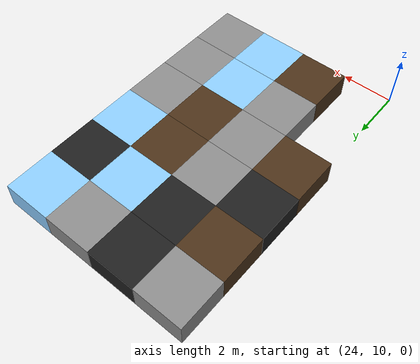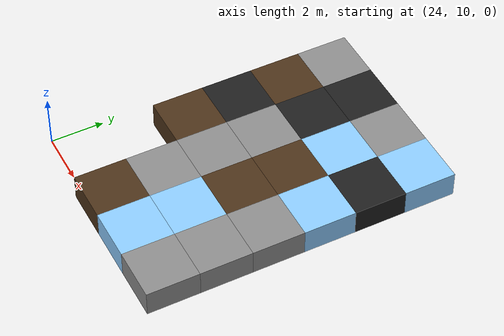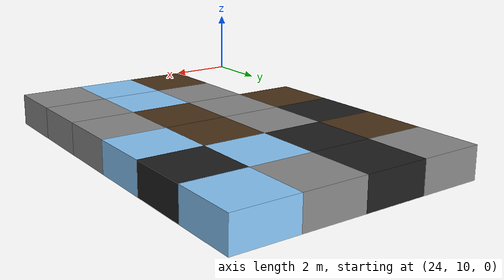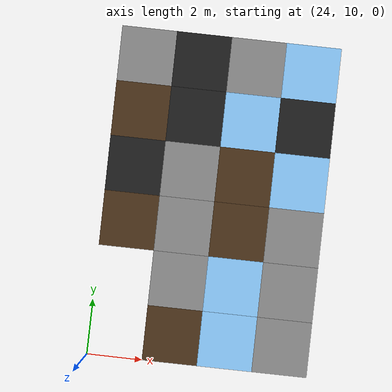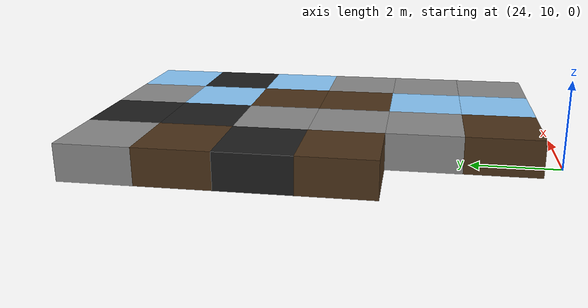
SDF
<sdf version="1.5">
 <world name="squares_example">
  <model name="tile_29_21">
   <static>true</static>
   <pose>27.000 11.000 -0.500 0 0 0</pose>
   <link name="link">
    <collision name="col">
     <geometry><box><size>2.0 2.0 1.0</size></box></geometry>
     <surface>
      <friction>
       <ode><mu>0.6</mu><mu2>0.4</mu2><fdir1>1 0 0</fdir1><slip1>0.08</slip1><slip2>0.08</slip2></ode>
       <torsional>
        <coefficient>0.03</coefficient>
        <use_patch_radius>false</use_patch_radius>
        <surface_radius>0.12</surface_radius>
        <ode><slip>0.0</slip></ode>
       </torsional>
      </friction>
      <bounce><restitution_coefficient>0.0</restitution_coefficient><threshold>0.1</threshold></bounce>
      <contact>
       <ode><kp>1000000.0</kp><kd>10000.0</kd><max_vel>0.01</max_vel><min_depth>0.0</min_depth></ode>
      </contact>
     </surface>
    </collision>
    <visual name="visual">
     <geometry><box><size>2.0 2.0 1.0</size></box></geometry>
     <material>
      <diffuse>0.30 0.20 0.10 1</diffuse>
      <ambient>0 0 0 0</ambient>
      <specular>0 0 0 1</specular>
      <emissive>0 0 0 1</emissive>
     </material>
    </visual>
   </link>
  </model>
  <model name="tile_30_21">
   <static>true</static>
   <pose>29.000 11.000 -0.500 0 0 0</pose>
   <link name="link">
    <collision name="col">
     <geometry><box><size>2.0 2.0 1.0</size></box></geometry>
     <surface>
      <friction>
       <ode><mu>0.03</mu><mu2>0.02</mu2><fdir1>1 0 0</fdir1><slip1>0.03</slip1><slip2>0.03</slip2></ode>
       <torsional>
        <coefficient>0.005</coefficient>
        <use_patch_radius>false</use_patch_radius>
        <surface_radius>0.12</surface_radius>
        <ode><slip>0.01</slip></ode>
       </torsional>
      </friction>
      <bounce><restitution_coefficient>0.0</restitution_coefficient><threshold>0.1</threshold></bounce>
      <contact>
       <ode><kp>10000000.0</kp><kd>1000.0</kd><max_vel>0.01</max_vel><min_depth>0.0</min_depth></ode>
      </contact>
     </surface>
    </collision>
    <visual name="visual">
     <geometry><box><size>2.0 2.0 1.0</size></box></geometry>
     <material>
      <diffuse>0.55 0.80 1.00 1</diffuse>
      <ambient>0 0 0 0</ambient>
      <specular>0 0 0 1</specular>
      <emissive>0 0 0 1</emissive>
     </material>
    </visual>
   </link>
  </model>
  <model name="tile_31_21">
   <static>true</static>
   <pose>31.000 11.000 -0.500 0 0 0</pose>
   <link name="link">
    <collision name="col">
     <geometry><box><size>2.0 2.0 1.0</size></box></geometry>
     <surface>
      <friction>
       <ode><mu>0.8</mu><mu2>0.3</mu2><fdir1>1 0 0</fdir1><slip1>0.0</slip1><slip2>0.0</slip2></ode>
       <torsional>
        <coefficient>0.03</coefficient>
        <use_patch_radius>false</use_patch_radius>
        <surface_radius>0.12</surface_radius>
        <ode><slip>0.0</slip></ode>
       </torsional>
      </friction>
      <bounce><restitution_coefficient>0.0</restitution_coefficient><threshold>0.1</threshold></bounce>
      <contact>
       <ode><kp>10000000000.0</kp><kd>10000000.0</kd><max_vel>0.01</max_vel><min_depth>0.0</min_depth></ode>
      </contact>
     </surface>
    </collision>
    <visual name="visual">
     <geometry><box><size>2.0 2.0 1.0</size></box></geometry>
     <material>
      <diffuse>0.55 0.55 0.55 1</diffuse>
      <ambient>0 0 0 0</ambient>
      <specular>0 0 0 1</specular>
      <emissive>0 0 0 1</emissive>
     </material>
    </visual>
   </link>
  </model>
  <model name="tile_29_22">
   <static>true</static>
   <pose>27.000 13.000 -0.500 0 0 0</pose>
   <link name="link">
    <collision name="col">
     <geometry><box><size>2.0 2.0 1.0</size></box></geometry>
     <surface>
      <friction>
       <ode><mu>0.8</mu><mu2>0.3</mu2><fdir1>1 0 0</fdir1><slip1>0.0</slip1><slip2>0.0</slip2></ode>
       <torsional>
        <coefficient>0.03</coefficient>
        <use_patch_radius>false</use_patch_radius>
        <surface_radius>0.12</surface_radius>
        <ode><slip>0.0</slip></ode>
       </torsional>
      </friction>
      <bounce><restitution_coefficient>0.0</restitution_coefficient><threshold>0.1</threshold></bounce>
      <contact>
       <ode><kp>10000000000.0</kp><kd>10000000.0</kd><max_vel>0.01</max_vel><min_depth>0.0</min_depth></ode>
      </contact>
     </surface>
    </collision>
    <visual name="visual">
     <geometry><box><size>2.0 2.0 1.0</size></box></geometry>
     <material>
      <diffuse>0.55 0.55 0.55 1</diffuse>
      <ambient>0 0 0 0</ambient>
      <specular>0 0 0 1</specular>
      <emissive>0 0 0 1</emissive>
     </material>
    </visual>
   </link>
  </model>
  <model name="tile_30_22">
   <static>true</static>
   <pose>29.000 13.000 -0.500 0 0 0</pose>
   <link name="link">
    <collision name="col">
     <geometry><box><size>2.0 2.0 1.0</size></box></geometry>
     <surface>
      <friction>
       <ode><mu>0.03</mu><mu2>0.02</mu2><fdir1>1 0 0</fdir1><slip1>0.03</slip1><slip2>0.03</slip2></ode>
       <torsional>
        <coefficient>0.005</coefficient>
        <use_patch_radius>false</use_patch_radius>
        <surface_radius>0.12</surface_radius>
        <ode><slip>0.01</slip></ode>
       </torsional>
      </friction>
      <bounce><restitution_coefficient>0.0</restitution_coefficient><threshold>0.1</threshold></bounce>
      <contact>
       <ode><kp>10000000.0</kp><kd>1000.0</kd><max_vel>0.01</max_vel><min_depth>0.0</min_depth></ode>
      </contact>
     </surface>
    </collision>
    <visual name="visual">
     <geometry><box><size>2.0 2.0 1.0</size></box></geometry>
     <material>
      <diffuse>0.55 0.80 1.00 1</diffuse>
      <ambient>0 0 0 0</ambient>
      <specular>0 0 0 1</specular>
      <emissive>0 0 0 1</emissive>
     </material>
    </visual>
   </link>
  </model>
  <model name="tile_31_22">
   <static>true</static>
   <pose>31.000 13.000 -0.500 0 0 0</pose>
   <link name="link">
    <collision name="col">
     <geometry><box><size>2.0 2.0 1.0</size></box></geometry>
     <surface>
      <friction>
       <ode><mu>0.8</mu><mu2>0.3</mu2><fdir1>1 0 0</fdir1><slip1>0.0</slip1><slip2>0.0</slip2></ode>
       <torsional>
        <coefficient>0.03</coefficient>
        <use_patch_radius>false</use_patch_radius>
        <surface_radius>0.12</surface_radius>
        <ode><slip>0.0</slip></ode>
       </torsional>
      </friction>
      <bounce><restitution_coefficient>0.0</restitution_coefficient><threshold>0.1</threshold></bounce>
      <contact>
       <ode><kp>10000000000.0</kp><kd>10000000.0</kd><max_vel>0.01</max_vel><min_depth>0.0</min_depth></ode>
      </contact>
     </surface>
    </collision>
    <visual name="visual">
     <geometry><box><size>2.0 2.0 1.0</size></box></geometry>
     <material>
      <diffuse>0.55 0.55 0.55 1</diffuse>
      <ambient>0 0 0 0</ambient>
      <specular>0 0 0 1</specular>
      <emissive>0 0 0 1</emissive>
     </material>
    </visual>
   </link>
  </model>
  <model name="tile_28_23">
   <static>true</static>
   <pose>25.000 15.000 -0.500 0 0 0</pose>
   <link name="link">
    <collision name="col">
     <geometry><box><size>2.0 2.0 1.0</size></box></geometry>
     <surface>
      <friction>
       <ode><mu>0.6</mu><mu2>0.4</mu2><fdir1>1 0 0</fdir1><slip1>0.08</slip1><slip2>0.08</slip2></ode>
       <torsional>
        <coefficient>0.03</coefficient>
        <use_patch_radius>false</use_patch_radius>
        <surface_radius>0.12</surface_radius>
        <ode><slip>0.0</slip></ode>
       </torsional>
      </friction>
      <bounce><restitution_coefficient>0.0</restitution_coefficient><threshold>0.1</threshold></bounce>
      <contact>
       <ode><kp>1000000.0</kp><kd>10000.0</kd><max_vel>0.01</max_vel><min_depth>0.0</min_depth></ode>
      </contact>
     </surface>
    </collision>
    <visual name="visual">
     <geometry><box><size>2.0 2.0 1.0</size></box></geometry>
     <material>
      <diffuse>0.30 0.20 0.10 1</diffuse>
      <ambient>0 0 0 0</ambient>
      <specular>0 0 0 1</specular>
      <emissive>0 0 0 1</emissive>
     </material>
    </visual>
   </link>
  </model>
  <model name="tile_29_23">
   <static>true</static>
   <pose>27.000 15.000 -0.500 0 0 0</pose>
   <link name="link">
    <collision name="col">
     <geometry><box><size>2.0 2.0 1.0</size></box></geometry>
     <surface>
      <friction>
       <ode><mu>0.8</mu><mu2>0.3</mu2><fdir1>1 0 0</fdir1><slip1>0.0</slip1><slip2>0.0</slip2></ode>
       <torsional>
        <coefficient>0.03</coefficient>
        <use_patch_radius>false</use_patch_radius>
        <surface_radius>0.12</surface_radius>
        <ode><slip>0.0</slip></ode>
       </torsional>
      </friction>
      <bounce><restitution_coefficient>0.0</restitution_coefficient><threshold>0.1</threshold></bounce>
      <contact>
       <ode><kp>10000000000.0</kp><kd>10000000.0</kd><max_vel>0.01</max_vel><min_depth>0.0</min_depth></ode>
      </contact>
     </surface>
    </collision>
    <visual name="visual">
     <geometry><box><size>2.0 2.0 1.0</size></box></geometry>
     <material>
      <diffuse>0.55 0.55 0.55 1</diffuse>
      <ambient>0 0 0 0</ambient>
      <specular>0 0 0 1</specular>
      <emissive>0 0 0 1</emissive>
     </material>
    </visual>
   </link>
  </model>
  <model name="tile_30_23">
   <static>true</static>
   <pose>29.000 15.000 -0.500 0 0 0</pose>
   <link name="link">
    <collision name="col">
     <geometry><box><size>2.0 2.0 1.0</size></box></geometry>
     <surface>
      <friction>
       <ode><mu>0.6</mu><mu2>0.4</mu2><fdir1>1 0 0</fdir1><slip1>0.08</slip1><slip2>0.08</slip2></ode>
       <torsional>
        <coefficient>0.03</coefficient>
        <use_patch_radius>false</use_patch_radius>
        <surface_radius>0.12</surface_radius>
        <ode><slip>0.0</slip></ode>
       </torsional>
      </friction>
      <bounce><restitution_coefficient>0.0</restitution_coefficient><threshold>0.1</threshold></bounce>
      <contact>
       <ode><kp>1000000.0</kp><kd>10000.0</kd><max_vel>0.01</max_vel><min_depth>0.0</min_depth></ode>
      </contact>
     </surface>
    </collision>
    <visual name="visual">
     <geometry><box><size>2.0 2.0 1.0</size></box></geometry>
     <material>
      <diffuse>0.30 0.20 0.10 1</diffuse>
      <ambient>0 0 0 0</ambient>
      <specular>0 0 0 1</specular>
      <emissive>0 0 0 1</emissive>
     </material>
    </visual>
   </link>
  </model>
  <model name="tile_31_23">
   <static>true</static>
   <pose>31.000 15.000 -0.500 0 0 0</pose>
   <link name="link">
    <collision name="col">
     <geometry><box><size>2.0 2.0 1.0</size></box></geometry>
     <surface>
      <friction>
       <ode><mu>0.8</mu><mu2>0.3</mu2><fdir1>1 0 0</fdir1><slip1>0.0</slip1><slip2>0.0</slip2></ode>
       <torsional>
        <coefficient>0.03</coefficient>
        <use_patch_radius>false</use_patch_radius>
        <surface_radius>0.12</surface_radius>
        <ode><slip>0.0</slip></ode>
       </torsional>
      </friction>
      <bounce><restitution_coefficient>0.0</restitution_coefficient><threshold>0.1</threshold></bounce>
      <contact>
       <ode><kp>10000000000.0</kp><kd>10000000.0</kd><max_vel>0.01</max_vel><min_depth>0.0</min_depth></ode>
      </contact>
     </surface>
    </collision>
    <visual name="visual">
     <geometry><box><size>2.0 2.0 1.0</size></box></geometry>
     <material>
      <diffuse>0.55 0.55 0.55 1</diffuse>
      <ambient>0 0 0 0</ambient>
      <specular>0 0 0 1</specular>
      <emissive>0 0 0 1</emissive>
     </material>
    </visual>
   </link>
  </model>
  <model name="tile_28_24">
   <static>true</static>
   <pose>25.000 17.000 -0.500 0 0 0</pose>
   <link name="link">
    <collision name="col">
     <geometry><box><size>2.0 2.0 1.0</size></box></geometry>
     <surface>
      <friction>
       <ode><mu>0.4</mu><mu2>0.15</mu2><fdir1>1 0 0</fdir1><slip1>0.0</slip1><slip2>0.0</slip2></ode>
       <torsional>
        <coefficient>0.03</coefficient>
        <use_patch_radius>false</use_patch_radius>
        <surface_radius>0.12</surface_radius>
        <ode><slip>0.0</slip></ode>
       </torsional>
      </friction>
      <bounce><restitution_coefficient>0.0</restitution_coefficient><threshold>0.1</threshold></bounce>
      <contact>
       <ode><kp>1000000000.0</kp><kd>1000000.0</kd><max_vel>0.01</max_vel><min_depth>0.0</min_depth></ode>
      </contact>
     </surface>
    </collision>
    <visual name="visual">
     <geometry><box><size>2.0 2.0 1.0</size></box></geometry>
     <material>
      <diffuse>0.12 0.12 0.12 1</diffuse>
      <ambient>0 0 0 0</ambient>
      <specular>0 0 0 1</specular>
      <emissive>0 0 0 1</emissive>
     </material>
    </visual>
   </link>
  </model>
  <model name="tile_29_24">
   <static>true</static>
   <pose>27.000 17.000 -0.500 0 0 0</pose>
   <link name="link">
    <collision name="col">
     <geometry><box><size>2.0 2.0 1.0</size></box></geometry>
     <surface>
      <friction>
       <ode><mu>0.8</mu><mu2>0.3</mu2><fdir1>1 0 0</fdir1><slip1>0.0</slip1><slip2>0.0</slip2></ode>
       <torsional>
        <coefficient>0.03</coefficient>
        <use_patch_radius>false</use_patch_radius>
        <surface_radius>0.12</surface_radius>
        <ode><slip>0.0</slip></ode>
       </torsional>
      </friction>
      <bounce><restitution_coefficient>0.0</restitution_coefficient><threshold>0.1</threshold></bounce>
      <contact>
       <ode><kp>10000000000.0</kp><kd>10000000.0</kd><max_vel>0.01</max_vel><min_depth>0.0</min_depth></ode>
      </contact>
     </surface>
    </collision>
    <visual name="visual">
     <geometry><box><size>2.0 2.0 1.0</size></box></geometry>
     <material>
      <diffuse>0.55 0.55 0.55 1</diffuse>
      <ambient>0 0 0 0</ambient>
      <specular>0 0 0 1</specular>
      <emissive>0 0 0 1</emissive>
     </material>
    </visual>
   </link>
  </model>
  <model name="tile_30_24">
   <static>true</static>
   <pose>29.000 17.000 -0.500 0 0 0</pose>
   <link name="link">
    <collision name="col">
     <geometry><box><size>2.0 2.0 1.0</size></box></geometry>
     <surface>
      <friction>
       <ode><mu>0.6</mu><mu2>0.4</mu2><fdir1>1 0 0</fdir1><slip1>0.08</slip1><slip2>0.08</slip2></ode>
       <torsional>
        <coefficient>0.03</coefficient>
        <use_patch_radius>false</use_patch_radius>
        <surface_radius>0.12</surface_radius>
        <ode><slip>0.0</slip></ode>
       </torsional>
      </friction>
      <bounce><restitution_coefficient>0.0</restitution_coefficient><threshold>0.1</threshold></bounce>
      <contact>
       <ode><kp>1000000.0</kp><kd>10000.0</kd><max_vel>0.01</max_vel><min_depth>0.0</min_depth></ode>
      </contact>
     </surface>
    </collision>
    <visual name="visual">
     <geometry><box><size>2.0 2.0 1.0</size></box></geometry>
     <material>
      <diffuse>0.30 0.20 0.10 1</diffuse>
      <ambient>0 0 0 0</ambient>
      <specular>0 0 0 1</specular>
      <emissive>0 0 0 1</emissive>
     </material>
    </visual>
   </link>
  </model>
  <model name="tile_31_24">
   <static>true</static>
   <pose>31.000 17.000 -0.500 0 0 0</pose>
   <link name="link">
    <collision name="col">
     <geometry><box><size>2.0 2.0 1.0</size></box></geometry>
     <surface>
      <friction>
       <ode><mu>0.03</mu><mu2>0.02</mu2><fdir1>1 0 0</fdir1><slip1>0.03</slip1><slip2>0.03</slip2></ode>
       <torsional>
        <coefficient>0.005</coefficient>
        <use_patch_radius>false</use_patch_radius>
        <surface_radius>0.12</surface_radius>
        <ode><slip>0.01</slip></ode>
       </torsional>
      </friction>
      <bounce><restitution_coefficient>0.0</restitution_coefficient><threshold>0.1</threshold></bounce>
      <contact>
       <ode><kp>10000000.0</kp><kd>1000.0</kd><max_vel>0.01</max_vel><min_depth>0.0</min_depth></ode>
      </contact>
     </surface>
    </collision>
    <visual name="visual">
     <geometry><box><size>2.0 2.0 1.0</size></box></geometry>
     <material>
      <diffuse>0.55 0.80 1.00 1</diffuse>
      <ambient>0 0 0 0</ambient>
      <specular>0 0 0 1</specular>
      <emissive>0 0 0 1</emissive>
     </material>
    </visual>
   </link>
  </model>
  <model name="tile_28_25">
   <static>true</static>
   <pose>25.000 19.000 -0.500 0 0 0</pose>
   <link name="link">
    <collision name="col">
     <geometry><box><size>2.0 2.0 1.0</size></box></geometry>
     <surface>
      <friction>
       <ode><mu>0.6</mu><mu2>0.4</mu2><fdir1>1 0 0</fdir1><slip1>0.08</slip1><slip2>0.08</slip2></ode>
       <torsional>
        <coefficient>0.03</coefficient>
        <use_patch_radius>false</use_patch_radius>
        <surface_radius>0.12</surface_radius>
        <ode><slip>0.0</slip></ode>
       </torsional>
      </friction>
      <bounce><restitution_coefficient>0.0</restitution_coefficient><threshold>0.1</threshold></bounce>
      <contact>
       <ode><kp>1000000.0</kp><kd>10000.0</kd><max_vel>0.01</max_vel><min_depth>0.0</min_depth></ode>
      </contact>
     </surface>
    </collision>
    <visual name="visual">
     <geometry><box><size>2.0 2.0 1.0</size></box></geometry>
     <material>
      <diffuse>0.30 0.20 0.10 1</diffuse>
      <ambient>0 0 0 0</ambient>
      <specular>0 0 0 1</specular>
      <emissive>0 0 0 1</emissive>
     </material>
    </visual>
   </link>
  </model>
  <model name="tile_29_25">
   <static>true</static>
   <pose>27.000 19.000 -0.500 0 0 0</pose>
   <link name="link">
    <collision name="col">
     <geometry><box><size>2.0 2.0 1.0</size></box></geometry>
     <surface>
      <friction>
       <ode><mu>0.4</mu><mu2>0.15</mu2><fdir1>1 0 0</fdir1><slip1>0.0</slip1><slip2>0.0</slip2></ode>
       <torsional>
        <coefficient>0.03</coefficient>
        <use_patch_radius>false</use_patch_radius>
        <surface_radius>0.12</surface_radius>
        <ode><slip>0.0</slip></ode>
       </torsional>
      </friction>
      <bounce><restitution_coefficient>0.0</restitution_coefficient><threshold>0.1</threshold></bounce>
      <contact>
       <ode><kp>1000000000.0</kp><kd>1000000.0</kd><max_vel>0.01</max_vel><min_depth>0.0</min_depth></ode>
      </contact>
     </surface>
    </collision>
    <visual name="visual">
     <geometry><box><size>2.0 2.0 1.0</size></box></geometry>
     <material>
      <diffuse>0.12 0.12 0.12 1</diffuse>
      <ambient>0 0 0 0</ambient>
      <specular>0 0 0 1</specular>
      <emissive>0 0 0 1</emissive>
     </material>
    </visual>
   </link>
  </model>
  <model name="tile_30_25">
   <static>true</static>
   <pose>29.000 19.000 -0.500 0 0 0</pose>
   <link name="link">
    <collision name="col">
     <geometry><box><size>2.0 2.0 1.0</size></box></geometry>
     <surface>
      <friction>
       <ode><mu>0.03</mu><mu2>0.02</mu2><fdir1>1 0 0</fdir1><slip1>0.03</slip1><slip2>0.03</slip2></ode>
       <torsional>
        <coefficient>0.005</coefficient>
        <use_patch_radius>false</use_patch_radius>
        <surface_radius>0.12</surface_radius>
        <ode><slip>0.01</slip></ode>
       </torsional>
      </friction>
      <bounce><restitution_coefficient>0.0</restitution_coefficient><threshold>0.1</threshold></bounce>
      <contact>
       <ode><kp>10000000.0</kp><kd>1000.0</kd><max_vel>0.01</max_vel><min_depth>0.0</min_depth></ode>
      </contact>
     </surface>
    </collision>
    <visual name="visual">
     <geometry><box><size>2.0 2.0 1.0</size></box></geometry>
     <material>
      <diffuse>0.55 0.80 1.00 1</diffuse>
      <ambient>0 0 0 0</ambient>
      <specular>0 0 0 1</specular>
      <emissive>0 0 0 1</emissive>
     </material>
    </visual>
   </link>
  </model>
  <model name="tile_31_25">
   <static>true</static>
   <pose>31.000 19.000 -0.500 0 0 0</pose>
   <link name="link">
    <collision name="col">
     <geometry><box><size>2.0 2.0 1.0</size></box></geometry>
     <surface>
      <friction>
       <ode><mu>0.4</mu><mu2>0.15</mu2><fdir1>1 0 0</fdir1><slip1>0.0</slip1><slip2>0.0</slip2></ode>
       <torsional>
        <coefficient>0.03</coefficient>
        <use_patch_radius>false</use_patch_radius>
        <surface_radius>0.12</surface_radius>
        <ode><slip>0.0</slip></ode>
       </torsional>
      </friction>
      <bounce><restitution_coefficient>0.0</restitution_coefficient><threshold>0.1</threshold></bounce>
      <contact>
       <ode><kp>1000000000.0</kp><kd>1000000.0</kd><max_vel>0.01</max_vel><min_depth>0.0</min_depth></ode>
      </contact>
     </surface>
    </collision>
    <visual name="visual">
     <geometry><box><size>2.0 2.0 1.0</size></box></geometry>
     <material>
      <diffuse>0.12 0.12 0.12 1</diffuse>
      <ambient>0 0 0 0</ambient>
      <specular>0 0 0 1</specular>
      <emissive>0 0 0 1</emissive>
     </material>
    </visual>
   </link>
  </model>
  <model name="tile_28_26">
   <static>true</static>
   <pose>25.000 21.000 -0.500 0 0 0</pose>
   <link name="link">
    <collision name="col">
     <geometry><box><size>2.0 2.0 1.0</size></box></geometry>
     <surface>
      <friction>
       <ode><mu>0.8</mu><mu2>0.3</mu2><fdir1>1 0 0</fdir1><slip1>0.0</slip1><slip2>0.0</slip2></ode>
       <torsional>
        <coefficient>0.03</coefficient>
        <use_patch_radius>false</use_patch_radius>
        <surface_radius>0.12</surface_radius>
        <ode><slip>0.0</slip></ode>
       </torsional>
      </friction>
      <bounce><restitution_coefficient>0.0</restitution_coefficient><threshold>0.1</threshold></bounce>
      <contact>
       <ode><kp>10000000000.0</kp><kd>10000000.0</kd><max_vel>0.01</max_vel><min_depth>0.0</min_depth></ode>
      </contact>
     </surface>
    </collision>
    <visual name="visual">
     <geometry><box><size>2.0 2.0 1.0</size></box></geometry>
     <material>
      <diffuse>0.55 0.55 0.55 1</diffuse>
      <ambient>0 0 0 0</ambient>
      <specular>0 0 0 1</specular>
      <emissive>0 0 0 1</emissive>
     </material>
    </visual>
   </link>
  </model>
  <model name="tile_29_26">
   <static>true</static>
   <pose>27.000 21.000 -0.500 0 0 0</pose>
   <link name="link">
    <collision name="col">
     <geometry><box><size>2.0 2.0 1.0</size></box></geometry>
     <surface>
      <friction>
       <ode><mu>0.4</mu><mu2>0.15</mu2><fdir1>1 0 0</fdir1><slip1>0.0</slip1><slip2>0.0</slip2></ode>
       <torsional>
        <coefficient>0.03</coefficient>
        <use_patch_radius>false</use_patch_radius>
        <surface_radius>0.12</surface_radius>
        <ode><slip>0.0</slip></ode>
       </torsional>
      </friction>
      <bounce><restitution_coefficient>0.0</restitution_coefficient><threshold>0.1</threshold></bounce>
      <contact>
       <ode><kp>1000000000.0</kp><kd>1000000.0</kd><max_vel>0.01</max_vel><min_depth>0.0</min_depth></ode>
      </contact>
     </surface>
    </collision>
    <visual name="visual">
     <geometry><box><size>2.0 2.0 1.0</size></box></geometry>
     <material>
      <diffuse>0.12 0.12 0.12 1</diffuse>
      <ambient>0 0 0 0</ambient>
      <specular>0 0 0 1</specular>
      <emissive>0 0 0 1</emissive>
     </material>
    </visual>
   </link>
  </model>
  <model name="tile_30_26">
   <static>true</static>
   <pose>29.000 21.000 -0.500 0 0 0</pose>
   <link name="link">
    <collision name="col">
     <geometry><box><size>2.0 2.0 1.0</size></box></geometry>
     <surface>
      <friction>
       <ode><mu>0.8</mu><mu2>0.3</mu2><fdir1>1 0 0</fdir1><slip1>0.0</slip1><slip2>0.0</slip2></ode>
       <torsional>
        <coefficient>0.03</coefficient>
        <use_patch_radius>false</use_patch_radius>
        <surface_radius>0.12</surface_radius>
        <ode><slip>0.0</slip></ode>
       </torsional>
      </friction>
      <bounce><restitution_coefficient>0.0</restitution_coefficient><threshold>0.1</threshold></bounce>
      <contact>
       <ode><kp>10000000000.0</kp><kd>10000000.0</kd><max_vel>0.01</max_vel><min_depth>0.0</min_depth></ode>
      </contact>
     </surface>
    </collision>
    <visual name="visual">
     <geometry><box><size>2.0 2.0 1.0</size></box></geometry>
     <material>
      <diffuse>0.55 0.55 0.55 1</diffuse>
      <ambient>0 0 0 0</ambient>
      <specular>0 0 0 1</specular>
      <emissive>0 0 0 1</emissive>
     </material>
    </visual>
   </link>
  </model>
  <model name="tile_31_26">
   <static>true</static>
   <pose>31.000 21.000 -0.500 0 0 0</pose>
   <link name="link">
    <collision name="col">
     <geometry><box><size>2.0 2.0 1.0</size></box></geometry>
     <surface>
      <friction>
       <ode><mu>0.03</mu><mu2>0.02</mu2><fdir1>1 0 0</fdir1><slip1>0.03</slip1><slip2>0.03</slip2></ode>
       <torsional>
        <coefficient>0.005</coefficient>
        <use_patch_radius>false</use_patch_radius>
        <surface_radius>0.12</surface_radius>
        <ode><slip>0.01</slip></ode>
       </torsional>
      </friction>
      <bounce><restitution_coefficient>0.0</restitution_coefficient><threshold>0.1</threshold></bounce>
      <contact>
       <ode><kp>10000000.0</kp><kd>1000.0</kd><max_vel>0.01</max_vel><min_depth>0.0</min_depth></ode>
      </contact>
     </surface>
    </collision>
    <visual name="visual">
     <geometry><box><size>2.0 2.0 1.0</size></box></geometry>
     <material>
      <diffuse>0.55 0.80 1.00 1</diffuse>
      <ambient>0 0 0 0</ambient>
      <specular>0 0 0 1</specular>
      <emissive>0 0 0 1</emissive>
     </material>
    </visual>
   </link>
  </model>
 </world>
</sdf>
